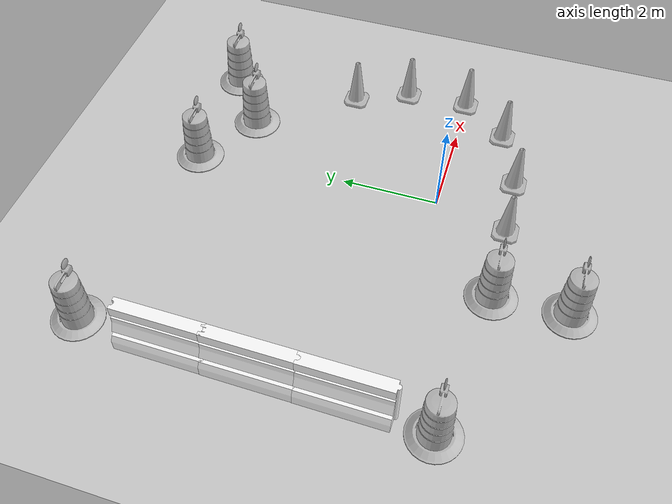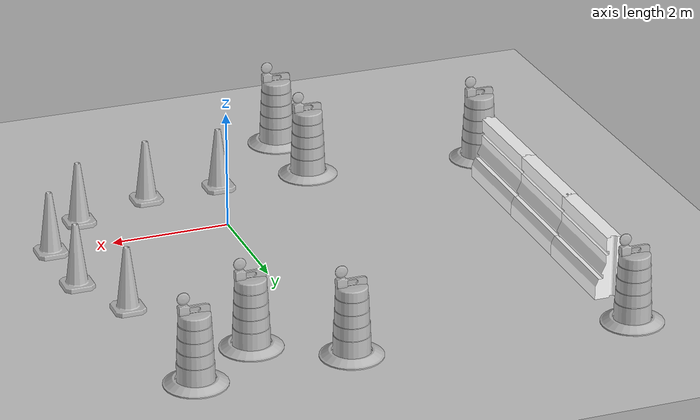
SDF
<sdf version="1.7">
 <world name="default">
  <light name="sun" type="directional">
   <pose>0 0 10 0 -0 0</pose>
   <diffuse>0.8 0.8 0.8 1</diffuse>
   <specular>0.2 0.2 0.2 1</specular>
   <attenuation>
    <range>1000</range>
    <constant>0.9</constant>
    <linear>0.01</linear>
    <quadratic>0.001</quadratic>
   </attenuation>
   <direction>-0.5 0.1 -0.9</direction>
   <spot><inner_angle>0</inner_angle><outer_angle>0</outer_angle><falloff>0</falloff></spot>
  </light>
  <model name="ground_plane">
   <static>1</static>
   <link name="link">
    <collision name="collision">
     <geometry><plane><normal>0 0 1</normal><size>100 100</size></plane></geometry>
     <surface>
      <contact><collide_bitmask>65535</collide_bitmask></contact>
      <friction><ode><mu>100</mu><mu2>50</mu2></ode></friction>
     </surface>
    </collision>
    <visual name="visual">
     <cast_shadows>0</cast_shadows>
     <geometry><plane><normal>0 0 1</normal><size>100 100</size></plane></geometry>
     <material>
      <script><uri>file://media/materials/scripts/gazebo.material</uri><name>Gazebo/Grey</name></script>
     </material>
    </visual>
   </link>
  </model>
  <gravity>0 0 -9.8</gravity>
  <magnetic_field>6e-06 2.3e-05 -4.2e-05</magnetic_field>
  <atmosphere type="adiabatic"/>
  <physics type="ode">
   <max_step_size>0.001</max_step_size>
   <real_time_factor>1</real_time_factor>
   <real_time_update_rate>1000</real_time_update_rate>
  </physics>
  <scene><ambient>0.4 0.4 0.4 1</ambient><background>0.7 0.7 0.7 1</background><shadows>1</shadows></scene>
  <spherical_coordinates>
   <surface_model>EARTH_WGS84</surface_model>
   <latitude_deg>0</latitude_deg>
   <longitude_deg>0</longitude_deg>
   <elevation>0</elevation>
   <heading_deg>0</heading_deg>
  </spherical_coordinates>
  <model name="Construction Cone">
   <link name="link">
    <collision name="collision">
     <geometry>
      <mesh><scale>10 10 10</scale><uri>model://construction_cone/meshes/construction_cone.dae</uri></mesh>
     </geometry>
    </collision>
    <visual name="visual">
     <geometry>
      <mesh><scale>10 10 10</scale><uri>model://construction_cone/meshes/construction_cone.dae</uri></mesh>
     </geometry>
    </visual>
    <inertial>
     <inertia><ixx>1</ixx><ixy>0</ixy><ixz>0</ixz><iyy>1</iyy><iyz>0</iyz><izz>1</izz></inertia>
     <mass>1</mass>
    </inertial>
   </link>
   <pose>3.00561 1.33951 0 0 -0 0</pose>
  </model>
  <model name="Construction Cone_0">
   <link name="link">
    <collision name="collision">
     <geometry>
      <mesh><scale>10 10 10</scale><uri>model://construction_cone/meshes/construction_cone.dae</uri></mesh>
     </geometry>
    </collision>
    <visual name="visual">
     <geometry>
      <mesh><scale>10 10 10</scale><uri>model://construction_cone/meshes/construction_cone.dae</uri></mesh>
     </geometry>
    </visual>
    <inertial>
     <inertia><ixx>1</ixx><ixy>0</ixy><ixz>0</ixz><iyy>1</iyy><iyz>0</iyz><izz>1</izz></inertia>
     <mass>1</mass>
    </inertial>
   </link>
   <pose>2.50206 2.45234 0 0 -0 0</pose>
  </model>
  <model name="Construction Barrel">
   <link name="link">
    <inertial>
     <pose>0 0 0.4 0 -0 0</pose>
     <mass>500</mass>
     <inertia><ixx>51.2096</ixx><iyy>51.2096</iyy><izz>25</izz><ixy>0</ixy><ixz>0</ixz><iyz>0</iyz></inertia>
    </inertial>
    <collision name="collision">
     <geometry><mesh><uri>model://construction_barrel/meshes/construction_barrel.dae</uri></mesh></geometry>
    </collision>
    <visual name="visual">
     <geometry><mesh><uri>model://construction_barrel/meshes/construction_barrel.dae</uri></mesh></geometry>
    </visual>
   </link>
   <pose>1.1157 4.3722 0 0 -0 0</pose>
  </model>
  <model name="drc_practice_white_jersey_barrier">
   <static>1</static>
   <link name="link">
    <visual name="visual">
     <geometry>
      <mesh><uri>model://drc_practice_white_jersey_barrier/meshes/jersey_barrier.dae</uri></mesh>
     </geometry>
    </visual>
    <collision name="collision">
     <geometry>
      <mesh><uri>model://drc_practice_white_jersey_barrier/meshes/jersey_barrier.dae</uri></mesh>
     </geometry>
    </collision>
   </link>
   <pose>-4.83171 3.87155 0 0 -0 0</pose>
  </model>
  <model name="drc_practice_white_jersey_barrier_clone">
   <static>1</static>
   <link name="link">
    <visual name="visual">
     <geometry>
      <mesh><uri>model://drc_practice_white_jersey_barrier/meshes/jersey_barrier.dae</uri></mesh>
     </geometry>
    </visual>
    <collision name="collision">
     <geometry>
      <mesh><uri>model://drc_practice_white_jersey_barrier/meshes/jersey_barrier.dae</uri></mesh>
     </geometry>
    </collision>
   </link>
   <pose>-4.84627 2.20225 0 0 -0 0</pose>
  </model>
  <model name="drc_practice_white_jersey_barrier_clone_0">
   <static>1</static>
   <link name="link">
    <visual name="visual">
     <geometry>
      <mesh><uri>model://drc_practice_white_jersey_barrier/meshes/jersey_barrier.dae</uri></mesh>
     </geometry>
    </visual>
    <collision name="collision">
     <geometry>
      <mesh><uri>model://drc_practice_white_jersey_barrier/meshes/jersey_barrier.dae</uri></mesh>
     </geometry>
    </collision>
   </link>
   <pose>-4.85879 0.485311 0 0 -0 0</pose>
  </model>
  <model name="Construction Cone_0_clone">
   <link name="link">
    <collision name="collision">
     <geometry>
      <mesh><scale>10 10 10</scale><uri>model://construction_cone/meshes/construction_cone.dae</uri></mesh>
     </geometry>
    </collision>
    <visual name="visual">
     <geometry>
      <mesh><scale>10 10 10</scale><uri>model://construction_cone/meshes/construction_cone.dae</uri></mesh>
     </geometry>
    </visual>
    <inertial>
     <inertia><ixx>1</ixx><ixy>0</ixy><ixz>0</ixz><iyy>1</iyy><iyz>0</iyz><izz>1</izz></inertia>
     <mass>1</mass>
    </inertial>
   </link>
   <pose>3.05866 0.018019 0 0 -0 0</pose>
  </model>
  <model name="Construction Cone_0_clone_0">
   <link name="link">
    <collision name="collision">
     <geometry>
      <mesh><scale>10 10 10</scale><uri>model://construction_cone/meshes/construction_cone.dae</uri></mesh>
     </geometry>
    </collision>
    <visual name="visual">
     <geometry>
      <mesh><scale>10 10 10</scale><uri>model://construction_cone/meshes/construction_cone.dae</uri></mesh>
     </geometry>
    </visual>
    <inertial>
     <inertia><ixx>1</ixx><ixy>0</ixy><ixz>0</ixz><iyy>1</iyy><iyz>0</iyz><izz>1</izz></inertia>
     <mass>1</mass>
    </inertial>
   </link>
   <pose>2.28822 -0.956401 0 0 -0 0</pose>
  </model>
  <model name="Construction Cone_0_clone_1">
   <link name="link">
    <collision name="collision">
     <geometry>
      <mesh><scale>10 10 10</scale><uri>model://construction_cone/meshes/construction_cone.dae</uri></mesh>
     </geometry>
    </collision>
    <visual name="visual">
     <geometry>
      <mesh><scale>10 10 10</scale><uri>model://construction_cone/meshes/construction_cone.dae</uri></mesh>
     </geometry>
    </visual>
    <inertial>
     <inertia><ixx>1</ixx><ixy>0</ixy><ixz>0</ixz><iyy>1</iyy><iyz>0</iyz><izz>1</izz></inertia>
     <mass>1</mass>
    </inertial>
   </link>
   <pose>0.969049 -1.42315 0 0 -0 0</pose>
  </model>
  <model name="Construction Cone_0_clone_2">
   <link name="link">
    <collision name="collision">
     <geometry>
      <mesh><scale>10 10 10</scale><uri>model://construction_cone/meshes/construction_cone.dae</uri></mesh>
     </geometry>
    </collision>
    <visual name="visual">
     <geometry>
      <mesh><scale>10 10 10</scale><uri>model://construction_cone/meshes/construction_cone.dae</uri></mesh>
     </geometry>
    </visual>
    <inertial>
     <inertia><ixx>1</ixx><ixy>0</ixy><ixz>0</ixz><iyy>1</iyy><iyz>0</iyz><izz>1</izz></inertia>
     <mass>1</mass>
    </inertial>
   </link>
   <pose>-0.341195 -1.4777 0 0 -0 0</pose>
  </model>
  <model name="Construction Barrel_clone">
   <link name="link">
    <inertial>
     <pose>0 0 0.4 0 -0 0</pose>
     <mass>500</mass>
     <inertia><ixx>51.2096</ixx><iyy>51.2096</iyy><izz>25</izz><ixy>0</ixy><ixz>0</ixz><iyz>0</iyz></inertia>
    </inertial>
    <collision name="collision">
     <geometry><mesh><uri>model://construction_barrel/meshes/construction_barrel.dae</uri></mesh></geometry>
    </collision>
    <visual name="visual">
     <geometry><mesh><uri>model://construction_barrel/meshes/construction_barrel.dae</uri></mesh></geometry>
    </visual>
   </link>
   <pose>-1.96599 -1.48919 0 0 -0 0</pose>
  </model>
  <model name="Construction Barrel_clone_0">
   <link name="link">
    <inertial>
     <pose>0 0 0.4 0 -0 0</pose>
     <mass>500</mass>
     <inertia><ixx>51.2096</ixx><iyy>51.2096</iyy><izz>25</izz><ixy>0</ixy><ixz>0</ixz><iyz>0</iyz></inertia>
    </inertial>
    <collision name="collision">
     <geometry><mesh><uri>model://construction_barrel/meshes/construction_barrel.dae</uri></mesh></geometry>
    </collision>
    <visual name="visual">
     <geometry><mesh><uri>model://construction_barrel/meshes/construction_barrel.dae</uri></mesh></geometry>
    </visual>
   </link>
   <pose>-1.91705 -2.94839 0 0 -0 0</pose>
  </model>
  <model name="Construction Barrel_clone_1">
   <link name="link">
    <inertial>
     <pose>0 0 0.4 0 -0 0</pose>
     <mass>500</mass>
     <inertia><ixx>51.2096</ixx><iyy>51.2096</iyy><izz>25</izz><ixy>0</ixy><ixz>0</ixz><iyz>0</iyz></inertia>
    </inertial>
    <collision name="collision">
     <geometry><mesh><uri>model://construction_barrel/meshes/construction_barrel.dae</uri></mesh></geometry>
    </collision>
    <visual name="visual">
     <geometry><mesh><uri>model://construction_barrel/meshes/construction_barrel.dae</uri></mesh></geometry>
    </visual>
   </link>
   <pose>2.297 5.21374 0 0 -0 0</pose>
  </model>
  <model name="Construction Barrel_clone_2">
   <link name="link">
    <inertial>
     <pose>0 0 0.4 0 -0 0</pose>
     <mass>500</mass>
     <inertia><ixx>51.2096</ixx><iyy>51.2096</iyy><izz>25</izz><ixy>0</ixy><ixz>0</ixz><iyz>0</iyz></inertia>
    </inertial>
    <collision name="collision">
     <geometry><mesh><uri>model://construction_barrel/meshes/construction_barrel.dae</uri></mesh></geometry>
    </collision>
    <visual name="visual">
     <geometry><mesh><uri>model://construction_barrel/meshes/construction_barrel.dae</uri></mesh></geometry>
    </visual>
   </link>
   <pose>-0.234397 5.1738 0 0 -0 0</pose>
  </model>
  <model name="Construction Barrel_clone_3">
   <link name="link">
    <inertial>
     <pose>0 0 0.4 0 -0 0</pose>
     <mass>500</mass>
     <inertia><ixx>51.2096</ixx><iyy>51.2096</iyy><izz>25</izz><ixy>0</ixy><ixz>0</ixz><iyz>0</iyz></inertia>
    </inertial>
    <collision name="collision">
     <geometry><mesh><uri>model://construction_barrel/meshes/construction_barrel.dae</uri></mesh></geometry>
    </collision>
    <visual name="visual">
     <geometry><mesh><uri>model://construction_barrel/meshes/construction_barrel.dae</uri></mesh></geometry>
    </visual>
   </link>
   <pose>-4.7462 5.65981 0 0 -0 0</pose>
  </model>
  <model name="Construction Barrel_clone_4">
   <link name="link">
    <inertial>
     <pose>0 0 0.4 0 -0 0</pose>
     <mass>500</mass>
     <inertia><ixx>51.2096</ixx><iyy>51.2096</iyy><izz>25</izz><ixy>0</ixy><ixz>0</ixz><iyz>0</iyz></inertia>
    </inertial>
    <collision name="collision">
     <geometry><mesh><uri>model://construction_barrel/meshes/construction_barrel.dae</uri></mesh></geometry>
    </collision>
    <visual name="visual">
     <geometry><mesh><uri>model://construction_barrel/meshes/construction_barrel.dae</uri></mesh></geometry>
    </visual>
   </link>
   <pose>-4.98307 -1.09218 0 0 -0 0</pose>
  </model>
 </world>
</sdf>
